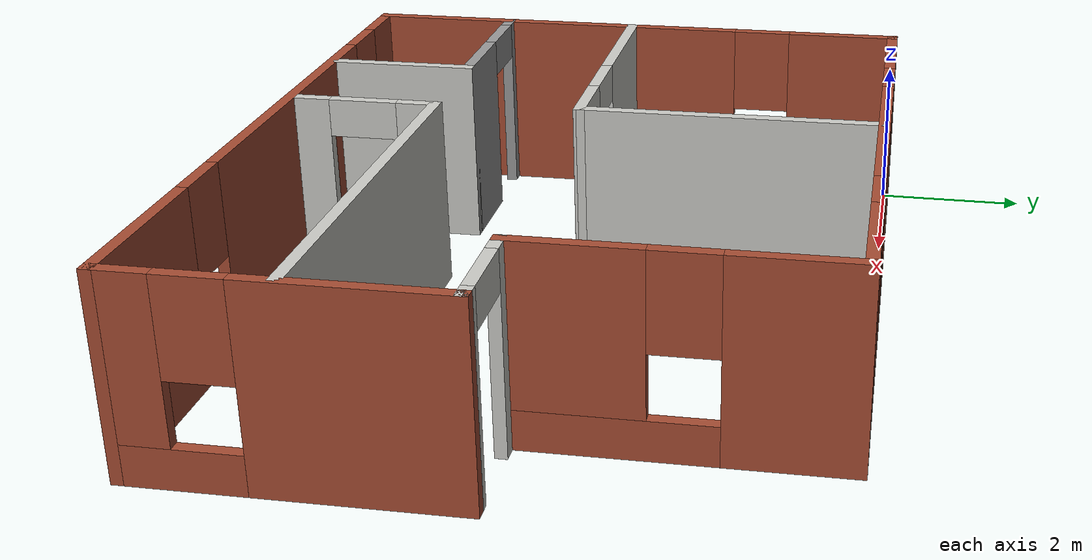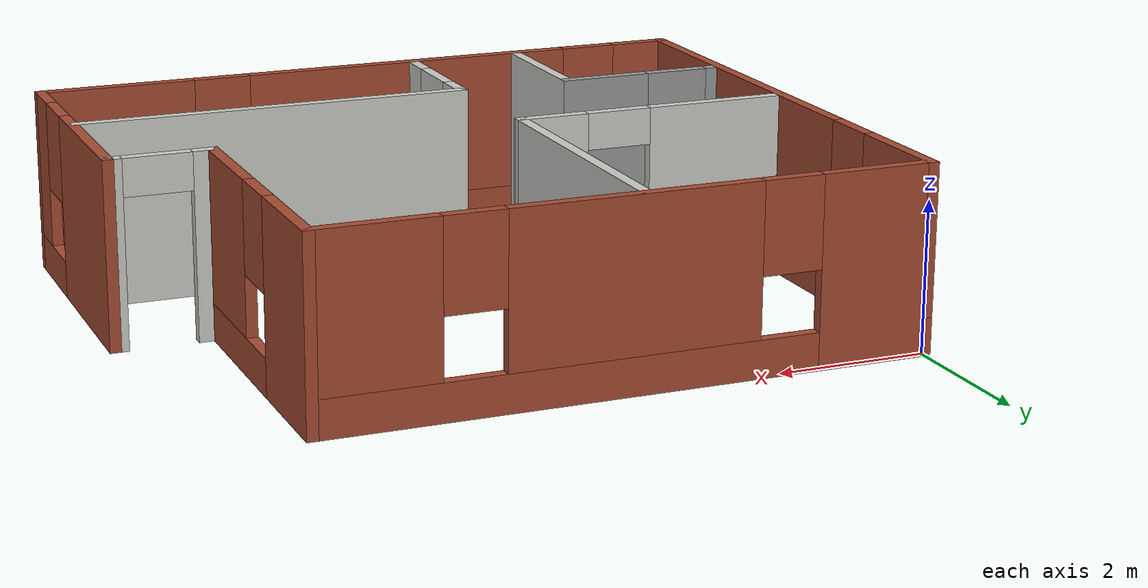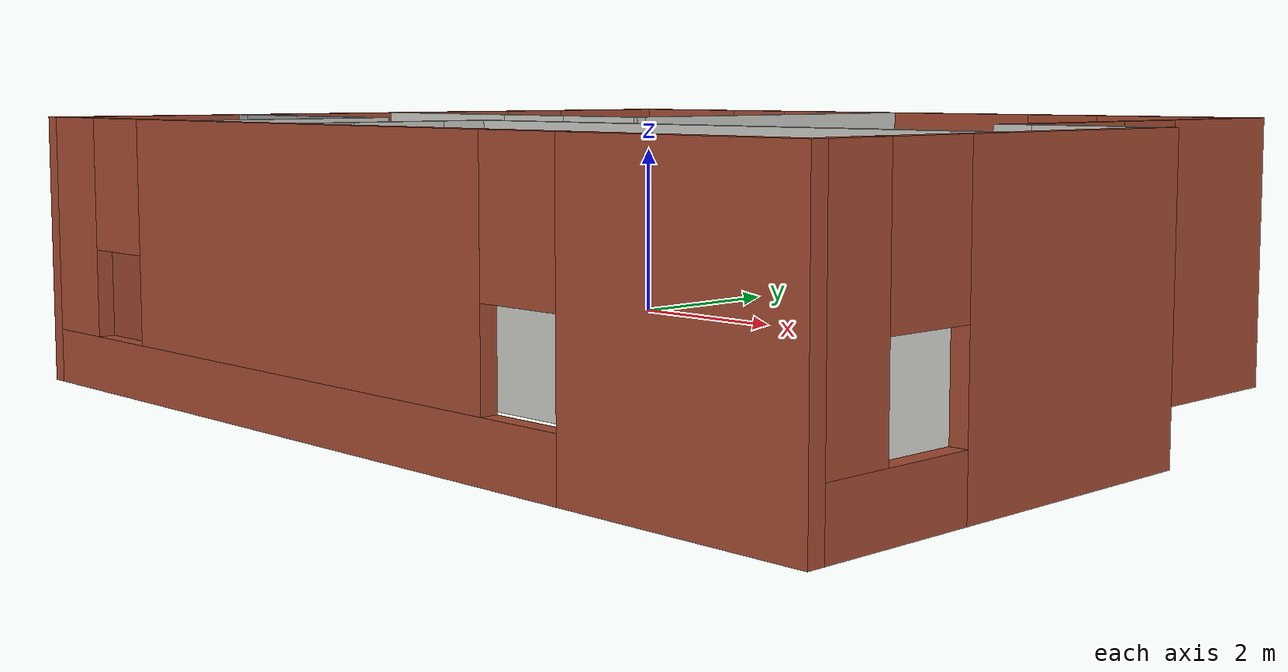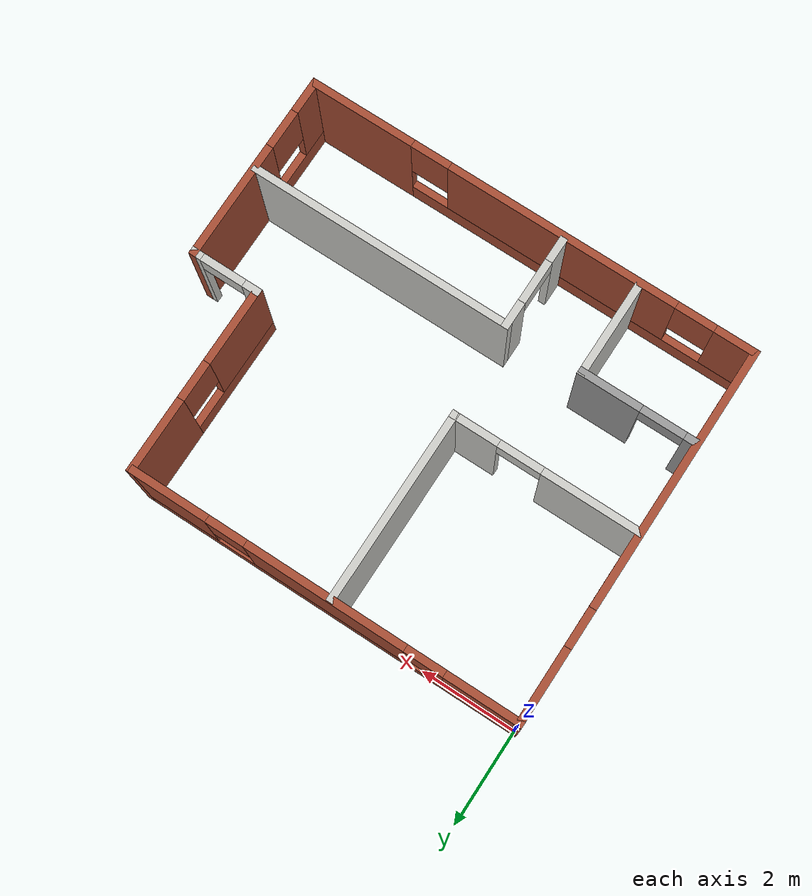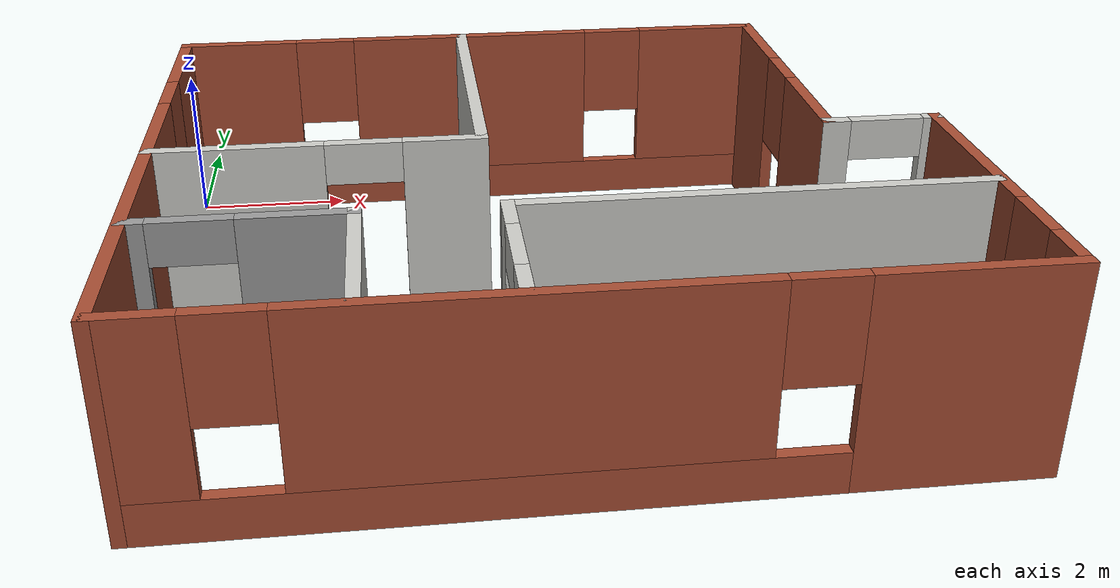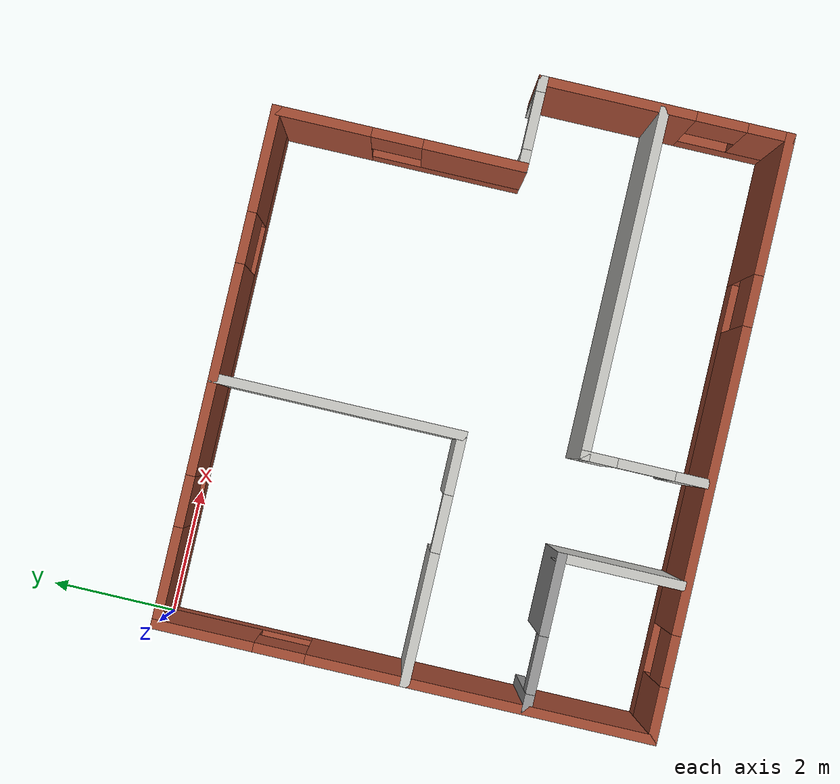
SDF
<?xml version='1.0'?>
<sdf version='1.7'>
  <model name='project1'>
    <pose>4.675 -3.85 0 0 -0 0</pose>
    <link name='Wall_0'>
      <pose>-0.675 3.85 0 0 -0 0</pose>
      <visual name='Wall_0_Visual_0'>
        <pose>-3.28349 0 1.25 0 -0 0</pose>
        <geometry>
          <box>
            <size>1.58303 0.15 2.5</size>
          </box>
        </geometry>
        <material>
          <script>
            <uri>file://media/materials/scripts/gazebo.material</uri>
            <name>Gazebo/Bricks</name>
          </script>
          <ambient>1 1 1 1</ambient>
        </material>
        <meta>
          <layer>0</layer>
        </meta>
      </visual>
      <collision name='Wall_0_Collision_0'>
        <geometry>
          <box>
            <size>1.58303 0.15 2.5</size>
          </box>
        </geometry>
        <pose>-3.28349 0 1.25 0 -0 0</pose>
      </collision>
      <visual name='Wall_0_Visual_1'>
        <pose>0.791513 0 0.25 0 -0 0</pose>
        <geometry>
          <box>
            <size>6.56697 0.15 0.5</size>
          </box>
        </geometry>
        <material>
          <script>
            <uri>file://media/materials/scripts/gazebo.material</uri>
            <name>Gazebo/Bricks</name>
          </script>
          <ambient>1 1 1 1</ambient>
        </material>
        <meta>
          <layer>0</layer>
        </meta>
      </visual>
      <collision name='Wall_0_Collision_1'>
        <geometry>
          <box>
            <size>6.56697 0.15 0.5</size>
          </box>
        </geometry>
        <pose>0.791513 0 0.25 0 -0 0</pose>
      </collision>
      <visual name='Wall_0_Visual_2'>
        <pose>-0.042824 0 1.5 0 -0 0</pose>
        <geometry>
          <box>
            <size>3.2983 0.15 2</size>
          </box>
        </geometry>
        <material>
          <script>
            <uri>file://media/materials/scripts/gazebo.material</uri>
            <name>Gazebo/Bricks</name>
          </script>
          <ambient>1 1 1 1</ambient>
        </material>
        <meta>
          <layer>0</layer>
        </meta>
      </visual>
      <collision name='Wall_0_Collision_2'>
        <geometry>
          <box>
            <size>3.2983 0.15 2</size>
          </box>
        </geometry>
        <pose>-0.042824 0 1.5 0 -0 0</pose>
      </collision>
      <visual name='Wall_0_Visual_3'>
        <pose>3.24066 0 1.5 0 -0 0</pose>
        <geometry>
          <box>
            <size>1.66867 0.15 2</size>
          </box>
        </geometry>
        <material>
          <script>
            <uri>file://media/materials/scripts/gazebo.material</uri>
            <name>Gazebo/Bricks</name>
          </script>
          <ambient>1 1 1 1</ambient>
        </material>
        <meta>
          <layer>0</layer>
        </meta>
      </visual>
      <collision name='Wall_0_Collision_3'>
        <geometry>
          <box>
            <size>1.66867 0.15 2</size>
          </box>
        </geometry>
        <pose>3.24066 0 1.5 0 -0 0</pose>
      </collision>
      <visual name='Wall_0_Visual_4'>
        <pose>-2.09197 0 1.9 0 -0 0</pose>
        <geometry>
          <box>
            <size>0.8 0.15 1.2</size>
          </box>
        </geometry>
        <material>
          <script>
            <uri>file://media/materials/scripts/gazebo.material</uri>
            <name>Gazebo/Bricks</name>
          </script>
          <ambient>1 1 1 1</ambient>
        </material>
        <meta>
          <layer>0</layer>
        </meta>
      </visual>
      <collision name='Wall_0_Collision_4'>
        <geometry>
          <box>
            <size>0.8 0.15 1.2</size>
          </box>
        </geometry>
        <pose>-2.09197 0 1.9 0 -0 0</pose>
      </collision>
      <visual name='Wall_0_Visual_5'>
        <pose>2.00633 0 1.9 0 -0 0</pose>
        <geometry>
          <box>
            <size>0.8 0.15 1.2</size>
          </box>
        </geometry>
        <material>
          <script>
            <uri>file://media/materials/scripts/gazebo.material</uri>
            <name>Gazebo/Bricks</name>
          </script>
          <ambient>1 1 1 1</ambient>
        </material>
        <meta>
          <layer>0</layer>
        </meta>
      </visual>
      <collision name='Wall_0_Collision_5'>
        <geometry>
          <box>
            <size>0.8 0.15 1.2</size>
          </box>
        </geometry>
        <pose>2.00633 0 1.9 0 -0 0</pose>
      </collision>
    </link>
    <link name='Wall_11'>
      <collision name='Wall_11_Collision'>
        <geometry>
          <box>
            <size>4 0.15 2.5</size>
          </box>
        </geometry>
        <pose>0 0 1.25 0 -0 0</pose>
      </collision>
      <visual name='Wall_11_Visual'>
        <pose>0 0 1.25 0 -0 0</pose>
        <geometry>
          <box>
            <size>4 0.15 2.5</size>
          </box>
        </geometry>
        <material>
          <script>
            <uri>file://media/materials/scripts/gazebo.material</uri>
            <name>Gazebo/CeilingTiled</name>
          </script>
          <ambient>1 1 1 1</ambient>
        </material>
        <meta>
          <layer>0</layer>
        </meta>
      </visual>
      <pose>-0.846184 1.90708 0 0 -0 -1.5707</pose>
    </link>
    <link name='Wall_12'>
      <pose>-2.7605 -0.018 0 0 -0 3.14159</pose>
      <visual name='Wall_12_Visual_0'>
        <pose>-1.48873 0 1.25 0 -0 0</pose>
        <geometry>
          <box>
            <size>1.00155 0.15 2.5</size>
          </box>
        </geometry>
        <material>
          <script>
            <uri>file://media/materials/scripts/gazebo.material</uri>
            <name>Gazebo/CeilingTiled</name>
          </script>
          <ambient>1 1 1 1</ambient>
        </material>
        <meta>
          <layer>0</layer>
        </meta>
      </visual>
      <collision name='Wall_12_Collision_0'>
        <geometry>
          <box>
            <size>1.00155 0.15 2.5</size>
          </box>
        </geometry>
        <pose>-1.48873 0 1.25 0 -0 0</pose>
      </collision>
      <visual name='Wall_12_Visual_1'>
        <pose>0.950775 0 1.25 0 -0 0</pose>
        <geometry>
          <box>
            <size>2.07745 0.15 2.5</size>
          </box>
        </geometry>
        <material>
          <script>
            <uri>file://media/materials/scripts/gazebo.material</uri>
            <name>Gazebo/CeilingTiled</name>
          </script>
          <ambient>1 1 1 1</ambient>
        </material>
        <meta>
          <layer>0</layer>
        </meta>
      </visual>
      <collision name='Wall_12_Collision_1'>
        <geometry>
          <box>
            <size>2.07745 0.15 2.5</size>
          </box>
        </geometry>
        <pose>0.950775 0 1.25 0 -0 0</pose>
      </collision>
      <visual name='Wall_12_Visual_2'>
        <pose>-0.537951 0 2.25 0 -0 0</pose>
        <geometry>
          <box>
            <size>0.9 0.15 0.5</size>
          </box>
        </geometry>
        <material>
          <script>
            <uri>file://media/materials/scripts/gazebo.material</uri>
            <name>Gazebo/CeilingTiled</name>
          </script>
          <ambient>1 1 1 1</ambient>
        </material>
        <meta>
          <layer>0</layer>
        </meta>
      </visual>
      <collision name='Wall_12_Collision_2'>
        <geometry>
          <box>
            <size>0.9 0.15 0.5</size>
          </box>
        </geometry>
        <pose>-0.537951 0 2.25 0 -0 0</pose>
      </collision>
    </link>
    <link name='Wall_14'>
      <pose>-3.48233 -1.89942 0 0 -0 0</pose>
      <visual name='Wall_14_Visual_0'>
        <pose>-1.09723 0 1.25 0 -0 0</pose>
        <geometry>
          <box>
            <size>0.305529 0.15 2.5</size>
          </box>
        </geometry>
        <material>
          <script>
            <uri>file://media/materials/scripts/gazebo.material</uri>
            <name>Gazebo/Grey</name>
          </script>
          <ambient>1 1 1 1</ambient>
        </material>
        <meta>
          <layer>0</layer>
        </meta>
      </visual>
      <collision name='Wall_14_Collision_0'>
        <geometry>
          <box>
            <size>0.305529 0.15 2.5</size>
          </box>
        </geometry>
        <pose>-1.09723 0 1.25 0 -0 0</pose>
      </collision>
      <visual name='Wall_14_Visual_1'>
        <pose>0.602765 0 1.25 0 -0 0</pose>
        <geometry>
          <box>
            <size>1.29447 0.15 2.5</size>
          </box>
        </geometry>
        <material>
          <script>
            <uri>file://media/materials/scripts/gazebo.material</uri>
            <name>Gazebo/Grey</name>
          </script>
          <ambient>1 1 1 1</ambient>
        </material>
        <meta>
          <layer>0</layer>
        </meta>
      </visual>
      <collision name='Wall_14_Collision_1'>
        <geometry>
          <box>
            <size>1.29447 0.15 2.5</size>
          </box>
        </geometry>
        <pose>0.602765 0 1.25 0 -0 0</pose>
      </collision>
      <visual name='Wall_14_Visual_2'>
        <pose>-0.494471 0 2.25 0 -0 0</pose>
        <geometry>
          <box>
            <size>0.9 0.15 0.5</size>
          </box>
        </geometry>
        <material>
          <script>
            <uri>file://media/materials/scripts/gazebo.material</uri>
            <name>Gazebo/Grey</name>
          </script>
          <ambient>1 1 1 1</ambient>
        </material>
        <meta>
          <layer>0</layer>
        </meta>
      </visual>
      <collision name='Wall_14_Collision_2'>
        <geometry>
          <box>
            <size>0.9 0.15 0.5</size>
          </box>
        </geometry>
        <pose>-0.494471 0 2.25 0 -0 0</pose>
      </collision>
    </link>
    <link name='Wall_15'>
      <collision name='Wall_15_Collision'>
        <geometry>
          <box>
            <size>2 0.15 2.5</size>
          </box>
        </geometry>
        <pose>0 0 1.25 0 -0 0</pose>
      </collision>
      <visual name='Wall_15_Visual'>
        <pose>0 0 1.25 0 -0 0</pose>
        <geometry>
          <box>
            <size>2 0.15 2.5</size>
          </box>
        </geometry>
        <material>
          <script>
            <uri>file://media/materials/scripts/gazebo.material</uri>
            <name>Gazebo/CeilingTiled</name>
          </script>
          <ambient>1 1 1 1</ambient>
        </material>
        <meta>
          <layer>0</layer>
        </meta>
      </visual>
      <pose>-2.30733 -2.82442 0 0 -0 -1.5708</pose>
    </link>
    <link name='Wall_18'>
      <collision name='Wall_18_Collision'>
        <geometry>
          <box>
            <size>5.5 0.15 2.5</size>
          </box>
        </geometry>
        <pose>0 0 1.25 0 -0 0</pose>
      </collision>
      <visual name='Wall_18_Visual'>
        <pose>0 0 1.25 0 -0 0</pose>
        <geometry>
          <box>
            <size>5.5 0.15 2.5</size>
          </box>
        </geometry>
        <material>
          <script>
            <uri>file://media/materials/scripts/gazebo.material</uri>
            <name>Gazebo/CeilingTiled</name>
          </script>
          <ambient>1 1 1 1</ambient>
        </material>
        <meta>
          <layer>0</layer>
        </meta>
      </visual>
      <pose>1.95311 -1.89942 0 0 -0 3.14159</pose>
    </link>
    <link name='Wall_19'>
      <pose>-0.721888 -2.82442 0 0 -0 -1.5708</pose>
      <visual name='Wall_19_Visual_0'>
        <pose>-0.71113 0 1.25 0 -0 0</pose>
        <geometry>
          <box>
            <size>0.577741 0.15 2.5</size>
          </box>
        </geometry>
        <material>
          <script>
            <uri>file://media/materials/scripts/gazebo.material</uri>
            <name>Gazebo/CeilingTiled</name>
          </script>
          <ambient>1 1 1 1</ambient>
        </material>
        <meta>
          <layer>0</layer>
        </meta>
      </visual>
      <collision name='Wall_19_Collision_0'>
        <geometry>
          <box>
            <size>0.577741 0.15 2.5</size>
          </box>
        </geometry>
        <pose>-0.71113 0 1.25 0 -0 0</pose>
      </collision>
      <visual name='Wall_19_Visual_1'>
        <pose>0.73887 0 1.25 0 -0 0</pose>
        <geometry>
          <box>
            <size>0.522259 0.15 2.5</size>
          </box>
        </geometry>
        <material>
          <script>
            <uri>file://media/materials/scripts/gazebo.material</uri>
            <name>Gazebo/CeilingTiled</name>
          </script>
          <ambient>1 1 1 1</ambient>
        </material>
        <meta>
          <layer>0</layer>
        </meta>
      </visual>
      <collision name='Wall_19_Collision_1'>
        <geometry>
          <box>
            <size>0.522259 0.15 2.5</size>
          </box>
        </geometry>
        <pose>0.73887 0 1.25 0 -0 0</pose>
      </collision>
      <visual name='Wall_19_Visual_2'>
        <pose>0.027741 0 2.25 0 -0 0</pose>
        <geometry>
          <box>
            <size>0.9 0.15 0.5</size>
          </box>
        </geometry>
        <material>
          <script>
            <uri>file://media/materials/scripts/gazebo.material</uri>
            <name>Gazebo/CeilingTiled</name>
          </script>
          <ambient>1 1 1 1</ambient>
        </material>
        <meta>
          <layer>0</layer>
        </meta>
      </visual>
      <collision name='Wall_19_Collision_2'>
        <geometry>
          <box>
            <size>0.9 0.15 0.5</size>
          </box>
        </geometry>
        <pose>0.027741 0 2.25 0 -0 0</pose>
      </collision>
    </link>
    <link name='Wall_2'>
      <pose>3.325 1.925 0 0 -0 -1.5708</pose>
      <visual name='Wall_2_Visual_0'>
        <pose>-1.21596 0 1.25 0 -0 0</pose>
        <geometry>
          <box>
            <size>1.56809 0.15 2.5</size>
          </box>
        </geometry>
        <material>
          <script>
            <uri>file://media/materials/scripts/gazebo.material</uri>
            <name>Gazebo/Bricks</name>
          </script>
          <ambient>1 1 1 1</ambient>
        </material>
        <meta>
          <layer>0</layer>
        </meta>
      </visual>
      <collision name='Wall_2_Collision_0'>
        <geometry>
          <box>
            <size>1.56809 0.15 2.5</size>
          </box>
        </geometry>
        <pose>-1.21596 0 1.25 0 -0 0</pose>
      </collision>
      <visual name='Wall_2_Visual_1'>
        <pose>0.784043 0 0.25 0 -0 0</pose>
        <geometry>
          <box>
            <size>2.43191 0.15 0.5</size>
          </box>
        </geometry>
        <material>
          <script>
            <uri>file://media/materials/scripts/gazebo.material</uri>
            <name>Gazebo/Bricks</name>
          </script>
          <ambient>1 1 1 1</ambient>
        </material>
        <meta>
          <layer>0</layer>
        </meta>
      </visual>
      <collision name='Wall_2_Collision_1'>
        <geometry>
          <box>
            <size>2.43191 0.15 0.5</size>
          </box>
        </geometry>
        <pose>0.784043 0 0.25 0 -0 0</pose>
      </collision>
      <visual name='Wall_2_Visual_2'>
        <pose>1.18404 0 1.5 0 -0 0</pose>
        <geometry>
          <box>
            <size>1.63191 0.15 2</size>
          </box>
        </geometry>
        <material>
          <script>
            <uri>file://media/materials/scripts/gazebo.material</uri>
            <name>Gazebo/Bricks</name>
          </script>
          <ambient>1 1 1 1</ambient>
        </material>
        <meta>
          <layer>0</layer>
        </meta>
      </visual>
      <collision name='Wall_2_Collision_2'>
        <geometry>
          <box>
            <size>1.63191 0.15 2</size>
          </box>
        </geometry>
        <pose>1.18404 0 1.5 0 -0 0</pose>
      </collision>
      <visual name='Wall_2_Visual_3'>
        <pose>-0.031914 0 1.9 0 -0 0</pose>
        <geometry>
          <box>
            <size>0.8 0.15 1.2</size>
          </box>
        </geometry>
        <material>
          <script>
            <uri>file://media/materials/scripts/gazebo.material</uri>
            <name>Gazebo/Bricks</name>
          </script>
          <ambient>1 1 1 1</ambient>
        </material>
        <meta>
          <layer>0</layer>
        </meta>
      </visual>
      <collision name='Wall_2_Collision_3'>
        <geometry>
          <box>
            <size>0.8 0.15 1.2</size>
          </box>
        </geometry>
        <pose>-0.031914 0 1.9 0 -0 0</pose>
      </collision>
    </link>
    <link name='Wall_3'>
      <pose>4 0 0 0 -0 0</pose>
      <visual name='Wall_3_Visual_0'>
        <pose>-0.575232 0 1.25 0 -0 0</pose>
        <geometry>
          <box>
            <size>0.349537 0.15 2.5</size>
          </box>
        </geometry>
        <material>
          <script>
            <uri>file://media/materials/scripts/gazebo.material</uri>
            <name>Gazebo/CeilingTiled</name>
          </script>
          <ambient>1 1 1 1</ambient>
        </material>
        <meta>
          <layer>0</layer>
        </meta>
      </visual>
      <collision name='Wall_3_Collision_0'>
        <geometry>
          <box>
            <size>0.349537 0.15 2.5</size>
          </box>
        </geometry>
        <pose>-0.575232 0 1.25 0 -0 0</pose>
      </collision>
      <visual name='Wall_3_Visual_1'>
        <pose>0.624768 0 1.25 0 -0 0</pose>
        <geometry>
          <box>
            <size>0.250463 0.15 2.5</size>
          </box>
        </geometry>
        <material>
          <script>
            <uri>file://media/materials/scripts/gazebo.material</uri>
            <name>Gazebo/CeilingTiled</name>
          </script>
          <ambient>1 1 1 1</ambient>
        </material>
        <meta>
          <layer>0</layer>
        </meta>
      </visual>
      <collision name='Wall_3_Collision_1'>
        <geometry>
          <box>
            <size>0.250463 0.15 2.5</size>
          </box>
        </geometry>
        <pose>0.624768 0 1.25 0 -0 0</pose>
      </collision>
      <visual name='Wall_3_Visual_2'>
        <pose>0.049537 0 2.25 0 -0 0</pose>
        <geometry>
          <box>
            <size>0.9 0.15 0.5</size>
          </box>
        </geometry>
        <material>
          <script>
            <uri>file://media/materials/scripts/gazebo.material</uri>
            <name>Gazebo/CeilingTiled</name>
          </script>
          <ambient>1 1 1 1</ambient>
        </material>
        <meta>
          <layer>0</layer>
        </meta>
      </visual>
      <collision name='Wall_3_Collision_2'>
        <geometry>
          <box>
            <size>0.9 0.15 0.5</size>
          </box>
        </geometry>
        <pose>0.049537 0 2.25 0 -0 0</pose>
      </collision>
    </link>
    <link name='Wall_5'>
      <pose>4.675 -1.925 0 0 -0 -1.5708</pose>
      <visual name='Wall_5_Visual_0'>
        <pose>-0.766666 0 1.25 0 -0 0</pose>
        <geometry>
          <box>
            <size>2.46667 0.15 2.5</size>
          </box>
        </geometry>
        <material>
          <script>
            <uri>file://media/materials/scripts/gazebo.material</uri>
            <name>Gazebo/Bricks</name>
          </script>
          <ambient>1 1 1 1</ambient>
        </material>
        <meta>
          <layer>0</layer>
        </meta>
      </visual>
      <collision name='Wall_5_Collision_0'>
        <geometry>
          <box>
            <size>2.46667 0.15 2.5</size>
          </box>
        </geometry>
        <pose>-0.766666 0 1.25 0 -0 0</pose>
      </collision>
      <visual name='Wall_5_Visual_1'>
        <pose>1.23333 0 0.25 0 -0 0</pose>
        <geometry>
          <box>
            <size>1.53333 0.15 0.5</size>
          </box>
        </geometry>
        <material>
          <script>
            <uri>file://media/materials/scripts/gazebo.material</uri>
            <name>Gazebo/Bricks</name>
          </script>
          <ambient>1 1 1 1</ambient>
        </material>
        <meta>
          <layer>0</layer>
        </meta>
      </visual>
      <collision name='Wall_5_Collision_1'>
        <geometry>
          <box>
            <size>1.53333 0.15 0.5</size>
          </box>
        </geometry>
        <pose>1.23333 0 0.25 0 -0 0</pose>
      </collision>
      <visual name='Wall_5_Visual_2'>
        <pose>1.63333 0 1.5 0 -0 0</pose>
        <geometry>
          <box>
            <size>0.733332 0.15 2</size>
          </box>
        </geometry>
        <material>
          <script>
            <uri>file://media/materials/scripts/gazebo.material</uri>
            <name>Gazebo/Bricks</name>
          </script>
          <ambient>1 1 1 1</ambient>
        </material>
        <meta>
          <layer>0</layer>
        </meta>
      </visual>
      <collision name='Wall_5_Collision_2'>
        <geometry>
          <box>
            <size>0.733332 0.15 2</size>
          </box>
        </geometry>
        <pose>1.63333 0 1.5 0 -0 0</pose>
      </collision>
      <visual name='Wall_5_Visual_3'>
        <pose>0.866668 0 1.9 0 -0 0</pose>
        <geometry>
          <box>
            <size>0.8 0.15 1.2</size>
          </box>
        </geometry>
        <material>
          <script>
            <uri>file://media/materials/scripts/gazebo.material</uri>
            <name>Gazebo/Bricks</name>
          </script>
          <ambient>1 1 1 1</ambient>
        </material>
        <meta>
          <layer>0</layer>
        </meta>
      </visual>
      <collision name='Wall_5_Collision_3'>
        <geometry>
          <box>
            <size>0.8 0.15 1.2</size>
          </box>
        </geometry>
        <pose>0.866668 0 1.9 0 -0 0</pose>
      </collision>
    </link>
    <link name='Wall_8'>
      <pose>0 -3.85 0 0 -0 3.14159</pose>
      <visual name='Wall_8_Visual_0'>
        <pose>-3.64142 0 1.25 0 -0 0</pose>
        <geometry>
          <box>
            <size>2.21716 0.15 2.5</size>
          </box>
        </geometry>
        <material>
          <script>
            <uri>file://media/materials/scripts/gazebo.material</uri>
            <name>Gazebo/Bricks</name>
          </script>
          <ambient>1 1 1 1</ambient>
        </material>
        <meta>
          <layer>0</layer>
        </meta>
      </visual>
      <collision name='Wall_8_Collision_0'>
        <geometry>
          <box>
            <size>2.21716 0.15 2.5</size>
          </box>
        </geometry>
        <pose>-3.64142 0 1.25 0 -0 0</pose>
      </collision>
      <visual name='Wall_8_Visual_1'>
        <pose>1.10858 0 0.25 0 -0 0</pose>
        <geometry>
          <box>
            <size>7.28284 0.15 0.5</size>
          </box>
        </geometry>
        <material>
          <script>
            <uri>file://media/materials/scripts/gazebo.material</uri>
            <name>Gazebo/Bricks</name>
          </script>
          <ambient>1 1 1 1</ambient>
        </material>
        <meta>
          <layer>0</layer>
        </meta>
      </visual>
      <collision name='Wall_8_Collision_1'>
        <geometry>
          <box>
            <size>7.28284 0.15 0.5</size>
          </box>
        </geometry>
        <pose>1.10858 0 0.25 0 -0 0</pose>
      </collision>
      <visual name='Wall_8_Visual_2'>
        <pose>0.664894 0 1.5 0 -0 0</pose>
        <geometry>
          <box>
            <size>4.79546 0.15 2</size>
          </box>
        </geometry>
        <material>
          <script>
            <uri>file://media/materials/scripts/gazebo.material</uri>
            <name>Gazebo/Bricks</name>
          </script>
          <ambient>1 1 1 1</ambient>
        </material>
        <meta>
          <layer>0</layer>
        </meta>
      </visual>
      <collision name='Wall_8_Collision_2'>
        <geometry>
          <box>
            <size>4.79546 0.15 2</size>
          </box>
        </geometry>
        <pose>0.664894 0 1.5 0 -0 0</pose>
      </collision>
      <visual name='Wall_8_Visual_3'>
        <pose>4.30631 0 1.5 0 -0 0</pose>
        <geometry>
          <box>
            <size>0.887375 0.15 2</size>
          </box>
        </geometry>
        <material>
          <script>
            <uri>file://media/materials/scripts/gazebo.material</uri>
            <name>Gazebo/Bricks</name>
          </script>
          <ambient>1 1 1 1</ambient>
        </material>
        <meta>
          <layer>0</layer>
        </meta>
      </visual>
      <collision name='Wall_8_Collision_3'>
        <geometry>
          <box>
            <size>0.887375 0.15 2</size>
          </box>
        </geometry>
        <pose>4.30631 0 1.5 0 -0 0</pose>
      </collision>
      <visual name='Wall_8_Visual_4'>
        <pose>-2.13284 0 1.9 0 -0 0</pose>
        <geometry>
          <box>
            <size>0.8 0.15 1.2</size>
          </box>
        </geometry>
        <material>
          <script>
            <uri>file://media/materials/scripts/gazebo.material</uri>
            <name>Gazebo/Bricks</name>
          </script>
          <ambient>1 1 1 1</ambient>
        </material>
        <meta>
          <layer>0</layer>
        </meta>
      </visual>
      <collision name='Wall_8_Collision_4'>
        <geometry>
          <box>
            <size>0.8 0.15 1.2</size>
          </box>
        </geometry>
        <pose>-2.13284 0 1.9 0 -0 0</pose>
      </collision>
      <visual name='Wall_8_Visual_5'>
        <pose>3.46263 0 1.9 0 -0 0</pose>
        <geometry>
          <box>
            <size>0.8 0.15 1.2</size>
          </box>
        </geometry>
        <material>
          <script>
            <uri>file://media/materials/scripts/gazebo.material</uri>
            <name>Gazebo/Bricks</name>
          </script>
          <ambient>1 1 1 1</ambient>
        </material>
        <meta>
          <layer>0</layer>
        </meta>
      </visual>
      <collision name='Wall_8_Collision_5'>
        <geometry>
          <box>
            <size>0.8 0.15 1.2</size>
          </box>
        </geometry>
        <pose>3.46263 0 1.9 0 -0 0</pose>
      </collision>
    </link>
    <link name='Wall_9'>
      <pose>-4.675 0 0 0 -0 1.5708</pose>
      <visual name='Wall_9_Visual_0'>
        <pose>-1.19161 0 1.25 0 -0 0</pose>
        <geometry>
          <box>
            <size>5.46679 0.15 2.5</size>
          </box>
        </geometry>
        <material>
          <script>
            <uri>file://media/materials/scripts/gazebo.material</uri>
            <name>Gazebo/Bricks</name>
          </script>
          <ambient>1 1 1 1</ambient>
        </material>
        <meta>
          <layer>0</layer>
        </meta>
      </visual>
      <collision name='Wall_9_Collision_0'>
        <geometry>
          <box>
            <size>5.46679 0.15 2.5</size>
          </box>
        </geometry>
        <pose>-1.19161 0 1.25 0 -0 0</pose>
      </collision>
      <visual name='Wall_9_Visual_1'>
        <pose>2.73339 0 0.25 0 -0 0</pose>
        <geometry>
          <box>
            <size>2.38321 0.15 0.5</size>
          </box>
        </geometry>
        <material>
          <script>
            <uri>file://media/materials/scripts/gazebo.material</uri>
            <name>Gazebo/Bricks</name>
          </script>
          <ambient>1 1 1 1</ambient>
        </material>
        <meta>
          <layer>0</layer>
        </meta>
      </visual>
      <collision name='Wall_9_Collision_1'>
        <geometry>
          <box>
            <size>2.38321 0.15 0.5</size>
          </box>
        </geometry>
        <pose>2.73339 0 0.25 0 -0 0</pose>
      </collision>
      <visual name='Wall_9_Visual_2'>
        <pose>3.1334 0 1.5 0 -0 0</pose>
        <geometry>
          <box>
            <size>1.58321 0.15 2</size>
          </box>
        </geometry>
        <material>
          <script>
            <uri>file://media/materials/scripts/gazebo.material</uri>
            <name>Gazebo/Bricks</name>
          </script>
          <ambient>1 1 1 1</ambient>
        </material>
        <meta>
          <layer>0</layer>
        </meta>
      </visual>
      <collision name='Wall_9_Collision_2'>
        <geometry>
          <box>
            <size>1.58321 0.15 2</size>
          </box>
        </geometry>
        <pose>3.1334 0 1.5 0 -0 0</pose>
      </collision>
      <visual name='Wall_9_Visual_3'>
        <pose>1.94179 0 1.9 0 -0 0</pose>
        <geometry>
          <box>
            <size>0.8 0.15 1.2</size>
          </box>
        </geometry>
        <material>
          <script>
            <uri>file://media/materials/scripts/gazebo.material</uri>
            <name>Gazebo/Bricks</name>
          </script>
          <ambient>1 1 1 1</ambient>
        </material>
        <meta>
          <layer>0</layer>
        </meta>
      </visual>
      <collision name='Wall_9_Collision_3'>
        <geometry>
          <box>
            <size>0.8 0.15 1.2</size>
          </box>
        </geometry>
        <pose>1.94179 0 1.9 0 -0 0</pose>
      </collision>
    </link>
    <static>1</static>
  </model>
</sdf>
